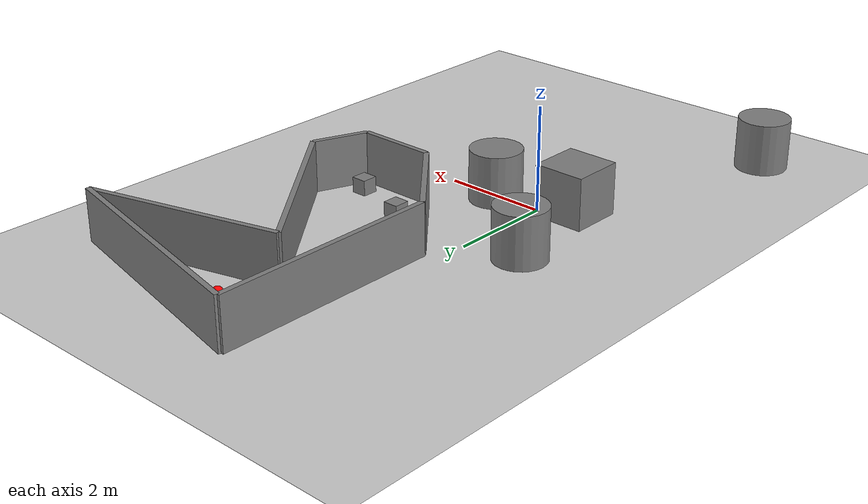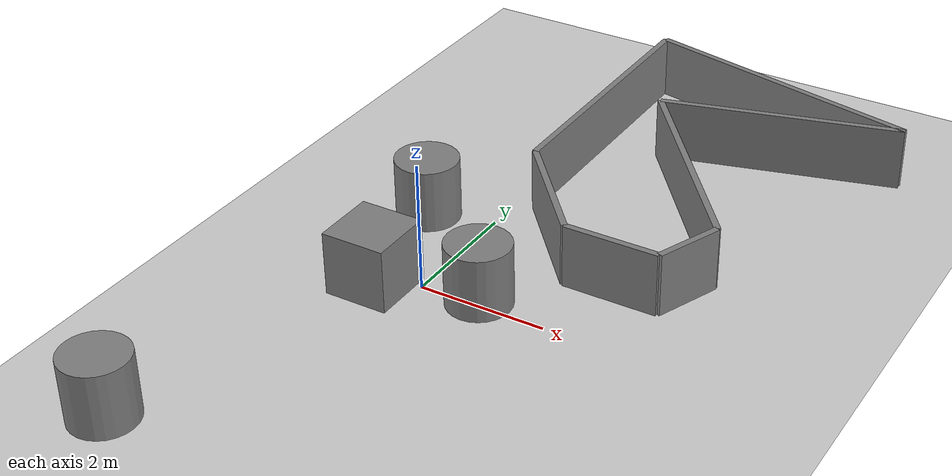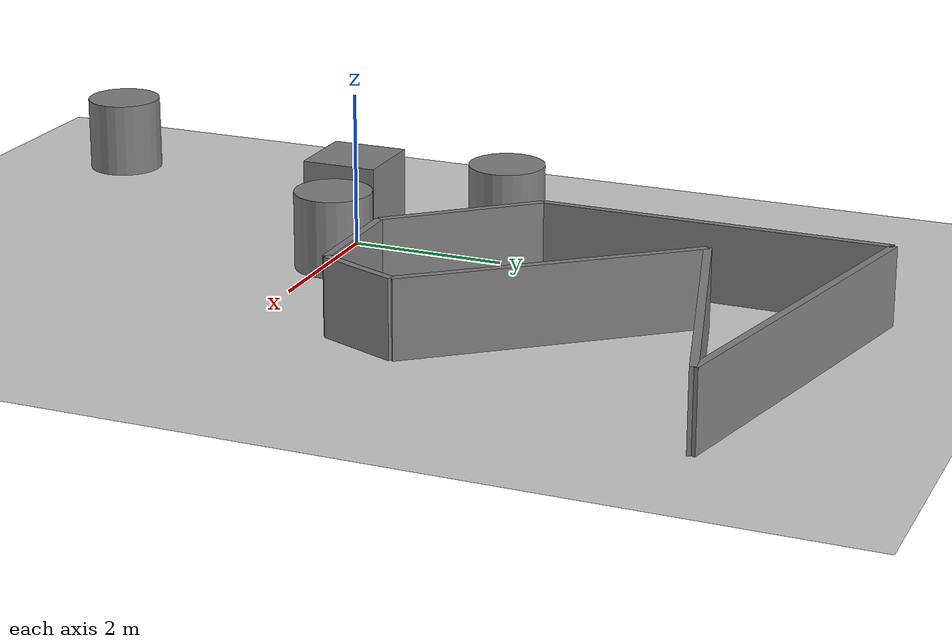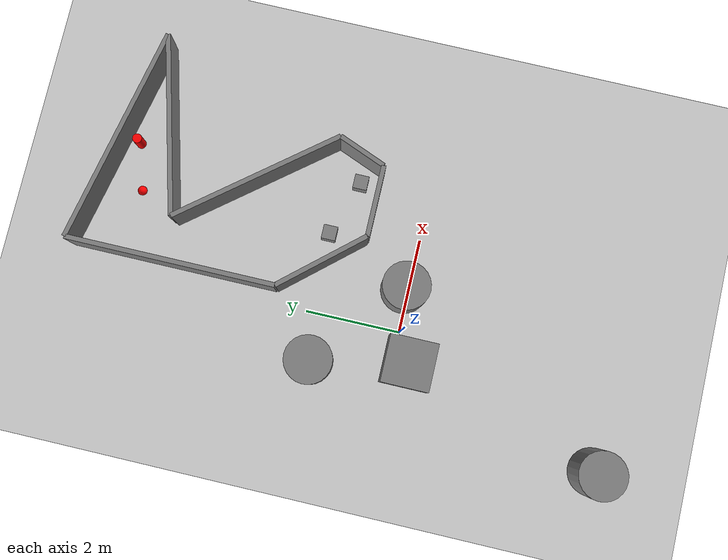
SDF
<?xml version='1.0' encoding='utf-8'?>
<sdf version="1.8">
  <world name="theWorld">
    <physics name="1ms" type="ignored">
      <max_step_size>0.001</max_step_size>
      <real_time_factor>1</real_time_factor>
      <real_time_update_rate>1000</real_time_update_rate>
    </physics>
    <plugin name="ignition::gazebo::systems::Physics" filename="ignition-gazebo-physics-system" />
    <plugin name="ignition::gazebo::systems::UserCommands" filename="ignition-gazebo-user-commands-system" />
    <plugin name="ignition::gazebo::systems::SceneBroadcaster" filename="ignition-gazebo-scene-broadcaster-system" />
    <plugin name="ignition::gazebo::systems::Contact" filename="ignition-gazebo-contact-system" />
    <gravity>0 0 -9.8</gravity>
    <magnetic_field>6e-06 2.3e-05 -4.2e-05</magnetic_field>
    <atmosphere type="adiabatic" />
    <scene>
      <ambient>0.4 0.4 0.4 1</ambient>
      <background>0.7 0.7 0.7 1</background>
      <shadows>true</shadows>
    </scene>
    <model name="ground_plane">
      <static>true</static>
      <link name="link">
        <collision name="collision">
          <geometry>
            <plane>
              <normal>0 0 1</normal>
              <size>100 100</size>
            </plane>
          </geometry>
          <surface>
            <friction>
              <ode />
            </friction>
            <bounce />
            <contact />
          </surface>
        </collision>
        <visual name="visual">
          <geometry>
            <plane>
              <normal>0 0 1</normal>
              <size>100 100</size>
            </plane>
          </geometry>
          <material>
            <ambient>0.8 0.8 0.8 1</ambient>
            <diffuse>0.8 0.8 0.8 1</diffuse>
            <specular>0.8 0.8 0.8 1</specular>
          </material>
        </visual>
        <pose>0 0 0 0 0 0</pose>
        <inertial>
          <pose>0 0 0 0 0 0</pose>
          <mass>1</mass>
          <inertia>
            <ixx>1</ixx>
            <ixy>0</ixy>
            <ixz>0</ixz>
            <iyy>1</iyy>
            <iyz>0</iyz>
            <izz>1</izz>
          </inertia>
        </inertial>
        <enable_wind>false</enable_wind>
      </link>
      <pose>0 0 0 0 0 0</pose>
      <self_collide>false</self_collide>
    </model>
    <light name="sun" type="directional">
      <pose>0 0 10 0 0 0</pose>
      <cast_shadows>true</cast_shadows>
      <intensity>1</intensity>
      <direction>-0.5 0.1 -0.9</direction>
      <diffuse>0.8 0.8 0.8 1</diffuse>
      <specular>0.2 0.2 0.2 1</specular>
      <attenuation>
        <range>1000</range>
        <linear>0.01</linear>
        <constant>0.9</constant>
        <quadratic>0.001</quadratic>
      </attenuation>
      <spot>
        <inner_angle>0</inner_angle>
        <outer_angle>0</outer_angle>
        <falloff>0</falloff>
      </spot>
    </light>
  <model name="wall_2">
            <static>true</static>
            <type>wall</type>
            <pose>2.450000 1.100000 0.500000 0 0 0.000000</pose>
            <link name="link">
                <collision name="collision">
                    <geometry><box><size>1.500000 0.100000 1.000000</size></box></geometry>
                </collision>
                <visual name="visual">
                    <geometry><box><size>1.500000 0.100000 1.000000</size></box></geometry>
                    <material>
                        <diffuse>0.5 0.5 0.5 1</diffuse>
                    </material>
                </visual>
            </link>
        </model><model name="wall_3">
            <static>true</static>
            <type>wall</type>
            <pose>3.400000 1.600000 0.500000 0 0 1.190290</pose>
            <link name="link">
                <collision name="collision">
                    <geometry><box><size>1.077033 0.100000 1.000000</size></box></geometry>
                </collision>
                <visual name="visual">
                    <geometry><box><size>1.077033 0.100000 1.000000</size></box></geometry>
                    <material>
                        <diffuse>0.5 0.5 0.5 1</diffuse>
                    </material>
                </visual>
            </link>
        </model><model name="wall_4">
            <static>true</static>
            <type>wall</type>
            <pose>2.400000 3.600000 0.500000 0 0 2.245537</pose>
            <link name="link">
                <collision name="collision">
                    <geometry><box><size>3.841875 0.100000 1.000000</size></box></geometry>
                </collision>
                <visual name="visual">
                    <geometry><box><size>3.841875 0.100000 1.000000</size></box></geometry>
                    <material>
                        <diffuse>0.5 0.5 0.5 1</diffuse>
                    </material>
                </visual>
            </link>
        </model><model name="wall_5">
            <static>true</static>
            <type>wall</type>
            <pose>3.050000 5.600000 0.500000 0 0 0.263964</pose>
            <link name="link">
                <collision name="collision">
                    <geometry><box><size>3.832754 0.100000 1.000000</size></box></geometry>
                </collision>
                <visual name="visual">
                    <geometry><box><size>3.832754 0.100000 1.000000</size></box></geometry>
                    <material>
                        <diffuse>0.5 0.5 0.5 1</diffuse>
                    </material>
                </visual>
            </link>
        </model><model name="wall_6">
            <static>true</static>
            <type>wall</type>
            <pose>2.600000 6.600000 0.500000 0 0 2.927532</pose>
            <link name="link">
                <collision name="collision">
                    <geometry><box><size>4.707441 0.100000 1.000000</size></box></geometry>
                </collision>
                <visual name="visual">
                    <geometry><box><size>4.707441 0.100000 1.000000</size></box></geometry>
                    <material>
                        <diffuse>0.5 0.5 0.5 1</diffuse>
                    </material>
                </visual>
            </link>
        </model><model name="wall_7">
            <static>true</static>
            <type>wall</type>
            <pose>0.300000 4.900000 0.500000 0 0 -1.570796</pose>
            <link name="link">
                <collision name="collision">
                    <geometry><box><size>4.400000 0.100000 1.000000</size></box></geometry>
                </collision>
                <visual name="visual">
                    <geometry><box><size>4.400000 0.100000 1.000000</size></box></geometry>
                    <material>
                        <diffuse>0.5 0.5 0.5 1</diffuse>
                    </material>
                </visual>
            </link>
        </model><model name="wall_9">
            <static>true</static>
            <type>wall</type>
            <pose>1.000000 1.900000 0.500000 0 0 -0.851966</pose>
            <link name="link">
                <collision name="collision">
                    <geometry><box><size>2.126029 0.100000 1.000000</size></box></geometry>
                </collision>
                <visual name="visual">
                    <geometry><box><size>2.126029 0.100000 1.000000</size></box></geometry>
                    <material>
                        <diffuse>0.5 0.5 0.5 1</diffuse>
                    </material>
                </visual>
            </link>
        </model><model name="box_10">
            <static>true</static>
            <type>box</type>
            <pose>2.900000 1.500000 0.150000 0 0 0</pose>
            <link name="link">
                <collision name="collision">
                    <geometry><box><size>0.300000 0.300000 0.300000</size></box></geometry>
                </collision>
                <visual name="visual">
                    <geometry><box><size>0.300000 0.300000 0.300000</size></box></geometry>
                    <material>
                        <diffuse>0.5 0.5 0.5 1</diffuse>
                    </material>
                </visual>
            </link>
        </model><model name="box_11">
            <static>true</static>
            <type>box</type>
            <pose>1.700000 1.900000 0.150000 0 0 0</pose>
            <link name="link">
                <collision name="collision">
                    <geometry><box><size>0.300000 0.300000 0.300000</size></box></geometry>
                </collision>
                <visual name="visual">
                    <geometry><box><size>0.300000 0.300000 0.300000</size></box></geometry>
                    <material>
                        <diffuse>0.5 0.5 0.5 1</diffuse>
                    </material>
                </visual>
            </link>
        </model><model name="cylinder_18">
            <static>true</static>
            <type>cylinder</type>
            <pose>2.700000 6.300000 0.250000 0 0 0</pose>
            <link name="link">
                <collision name="collision">
                    <geometry><cylinder><radius>0.100000</radius><length>0.500000</length></cylinder></geometry>
                </collision>
                <visual name="visual">
                    <geometry><cylinder><radius>0.100000</radius><length>0.500000</length></cylinder></geometry>
                    <material>
                        <diffuse>1 0 0 1</diffuse>
                    </material>
                </visual>
            </link>
        </model><model name="sphere_19">
            <static>true</static>
            <type>sphere</type>
            <pose>1.700000 6.000000 0.100000 0 0 0</pose>
            <link name="link">
                <collision name="collision">
                    <geometry><sphere><radius>0.100000</radius></sphere></geometry>
                </collision>
                <visual name="visual">
                    <geometry><sphere><radius>0.100000</radius></sphere></geometry>
                    <material>
                        <diffuse>1 0 0 1</diffuse>
                    </material>
                </visual>
            </link>
        </model><model name="box_17">
            <static>false</static>
            <type>box</type>
            <pose>-0.600000 -0.300000 0.500000 0 0 0</pose>
            <link name="link">
                <collision name="collision">
                    <geometry><box><size>1.000000 1.000000 1.000000</size></box></geometry>
                </collision>
                <visual name="visual">
                    <geometry><box><size>1.000000 1.000000 1.000000</size></box></geometry>
                    <material>
                        <diffuse>0.5 0.5 0.5 1</diffuse>
                    </material>
                </visual>
            </link>
        </model><model name="cylinder_16">
            <static>true</static>
            <type>cylinder</type>
            <pose>-1.000000 1.700000 0.500000 0 0 0</pose>
            <link name="link">
                <collision name="collision">
                    <geometry><cylinder><radius>0.500000</radius><length>1.000000</length></cylinder></geometry>
                </collision>
                <visual name="visual">
                    <geometry><cylinder><radius>0.500000</radius><length>1.000000</length></cylinder></geometry>
                    <material>
                        <diffuse>0.5 0.5 0.5 1</diffuse>
                    </material>
                </visual>
            </link>
        </model><model name="cylinder_17">
            <static>true</static>
            <type>cylinder</type>
            <pose>0.900000 0.100000 0.500000 0 0 0</pose>
            <link name="link">
                <collision name="collision">
                    <geometry><cylinder><radius>0.500000</radius><length>1.000000</length></cylinder></geometry>
                </collision>
                <visual name="visual">
                    <geometry><cylinder><radius>0.500000</radius><length>1.000000</length></cylinder></geometry>
                    <material>
                        <diffuse>0.5 0.5 0.5 1</diffuse>
                    </material>
                </visual>
            </link>
        </model><model name="cylinder_18">
            <static>true</static>
            <type>cylinder</type>
            <pose>-1.900000 -4.500000 0.500000 0 0 0</pose>
            <link name="link">
                <collision name="collision">
                    <geometry><cylinder><radius>0.500000</radius><length>1.000000</length></cylinder></geometry>
                </collision>
                <visual name="visual">
                    <geometry><cylinder><radius>0.500000</radius><length>1.000000</length></cylinder></geometry>
                    <material>
                        <diffuse>0.5 0.5 0.5 1</diffuse>
                    </material>
                </visual>
            </link>
        </model></world>
</sdf>
